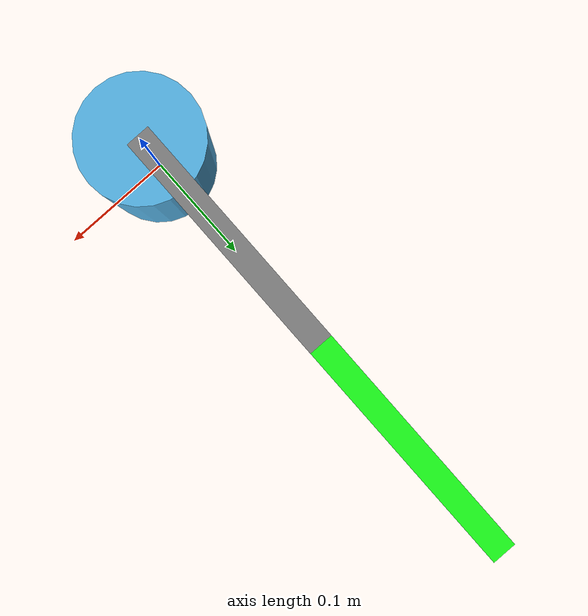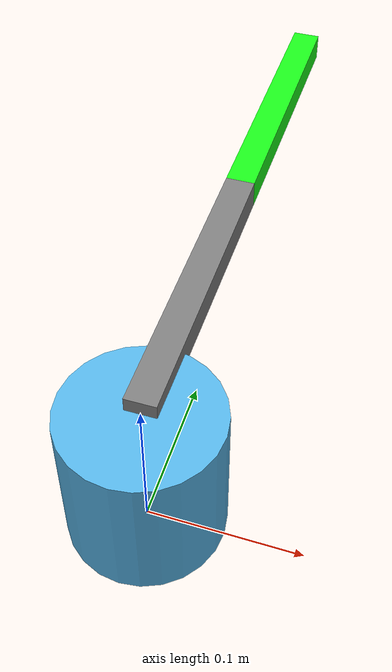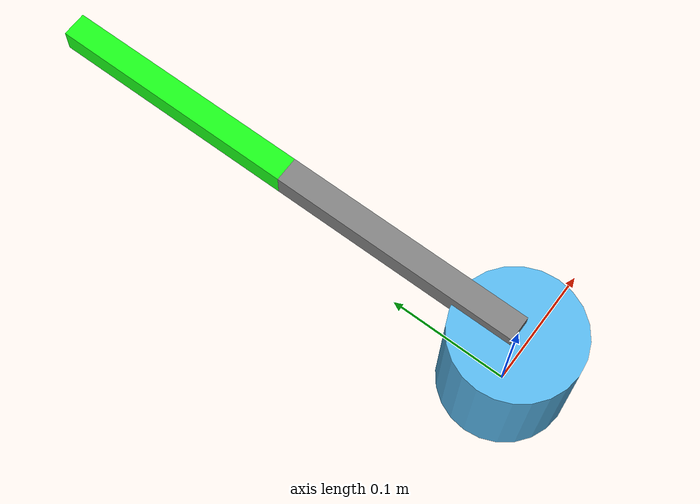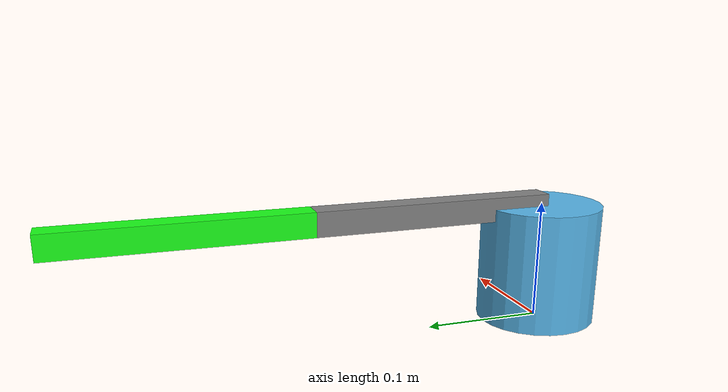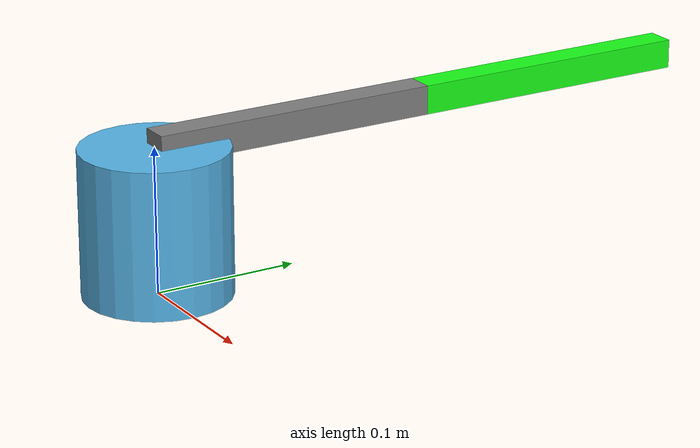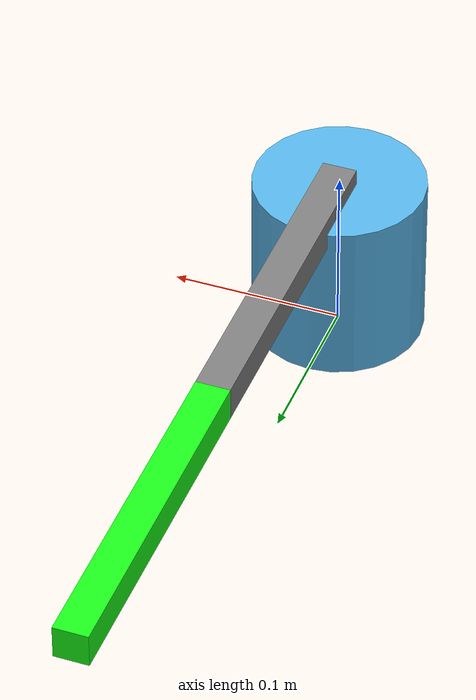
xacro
<?xml version='1.0'?>
<robot xmlns:xacro="http://www.ros.org/wiki/xacro" name="robot_arm_seb">

    <!-- PROPIEDADES -->
    <!-- Brazo -->
    <xacro:property name="arm1Ly" value="${0.2}" />
    <xacro:property name="arm2Ly" value="${0.2}" />
    <xacro:property name="armLxz" value="${0.02}" />

    <xacro:property name="m" value="1" />

    <!-- Base -->
    <xacro:property name="br" value="${0.05}" />
    <xacro:property name="bH" value="${0.1}" />

    <!-- MACROS / FUNCIONES -->
    <!--Boxes: x -> l; y -> w; z -> h -->
    <xacro:macro name="box_macro" params="p_name p_length p_width p_height p_offset p_matname p_r p_g p_b">
        <link name="${p_name}">
            <visual>
                <!-- box geometry -->
                <geometry>
                    <box size="${p_length} ${p_width} ${p_height}" />
                </geometry>
                <!-- Esto mueve la caja desde el centro, no el origen con respecto a la caja-->
                <origin xyz="0 ${p_offset} 0" rpy="0 0 0" />

                <material name="${p_matname}">
                    <color rgba="${p_r} ${p_g} ${p_b} 1" />
                </material>

            </visual>

            <inertial>
                <mass value="${m}" />
                <origin xyz="0 0 ${p_height/2}" rpy="0 0 0" />
                <inertia ixx="${1/12*m*(p_height*p_height + p_width*p_width)}" ixy="0" ixz="0"
                    iyy="${1/12*m*(p_length*p_length + p_height*p_height)}" iyz="0"
                    izz="${1/12*m*(p_width*p_width + p_length*p_length)}" />
            </inertial>

            <collision>
                <!-- box geometry -->
                <geometry>
                    <box size="${p_length} ${p_width} ${p_height}" />
                </geometry>
                <origin xyz="0 0 ${p_height/2}" rpy="0 0 0" />
            </collision>
        </link>
    </xacro:macro>

    <!-- CYLINDER: -->
     <xacro:macro name="cylinder_macro" params="p_name p_radius p_length">
        <link name="${p_name}">
            <visual>
                <!-- cylinder geometry -->
                <geometry>
                    <cylinder radius="${p_radius}" length="${p_length}" />
                </geometry>
                <origin xyz="0 0 0" rpy="0 0 0" />
            </visual>

            <inertial>
                <mass value="${m}" />
                <origin xyz="0 0 0" rpy="0 0 0" />
                <inertia ixx="${1/12*m*(p_length*p_length + 3*p_radius*p_radius)}" ixy="0" ixz="0"
                    iyy="${1/12*m*(p_length*p_length + 3*p_radius*p_radius)}" iyz="0"
                    izz="${1/2*m*p_radius*p_radius}" />
            </inertial>

            <collision>
                <!-- cylinder geometry -->
                <geometry>
                    <cylinder radius="${p_radius}" length="${p_length}" />
                </geometry>
                <origin xyz="0 0 0" rpy="0 0 0" />
            </collision>
        </link>
    </xacro:macro>

    <!-- INICIO ROBOT -->
    <link name="base_link">
    </link>

    <xacro:cylinder_macro p_name="armBase_link"
        p_radius="${br}"
        p_length="${bH}" />

    <joint name="base_armBase_joint" type="fixed">
        <parent link="base_link" />
        <child link="armBase_link" />
        <!--Crea
        offsets the child con respecto a parent -->
        <origin xyz="0 0 ${bH/2}" rpy="0 0 0" />
    </joint>

    <xacro:box_macro p_name="arm1_link"
        p_length="${armLxz}"
        p_width="${arm1Ly}"
        p_height="${armLxz}"
        p_offset="${arm1Ly/2}"
        p_matname="blue"
        p_r="${0.5}"
        p_g="${0.5}"
        p_b="${0.5}" />

    <joint name="armBase_arm1_joint" type="revolute">
        <parent link="armBase_link" />
        <child link="arm1_link" />
        <origin xyz="0 0 ${bH/2}" rpy="0 0 0" />
        <axis xyz="0 0 1" />
        <limit effort="1" lower="-1.57" upper="1.57" velocity="1" />
        <dynamics damping="0.1" friction="0.1" />
    </joint>

    <xacro:box_macro p_name="arm2_link"
        p_length="${armLxz}"
        p_width="${arm2Ly}"
        p_height="${armLxz}"
        p_offset="${arm2Ly/2}"
        p_matname="green"
        p_r="${0.1}"
        p_g="${1}"
        p_b="${0.1}" />

    <joint name="arm1_arm2_joint" type="revolute">
        <parent link="arm1_link" />
        <child link="arm2_link" />
        <origin xyz="0 ${arm1Ly} 0" rpy="0 0 0" />
        <axis xyz="0 0 1" />
        <limit effort="1" lower="-1.57" upper="1.57" velocity="1" />
        <dynamics damping="0.1" friction="0.1" />
    </joint>

</robot>
